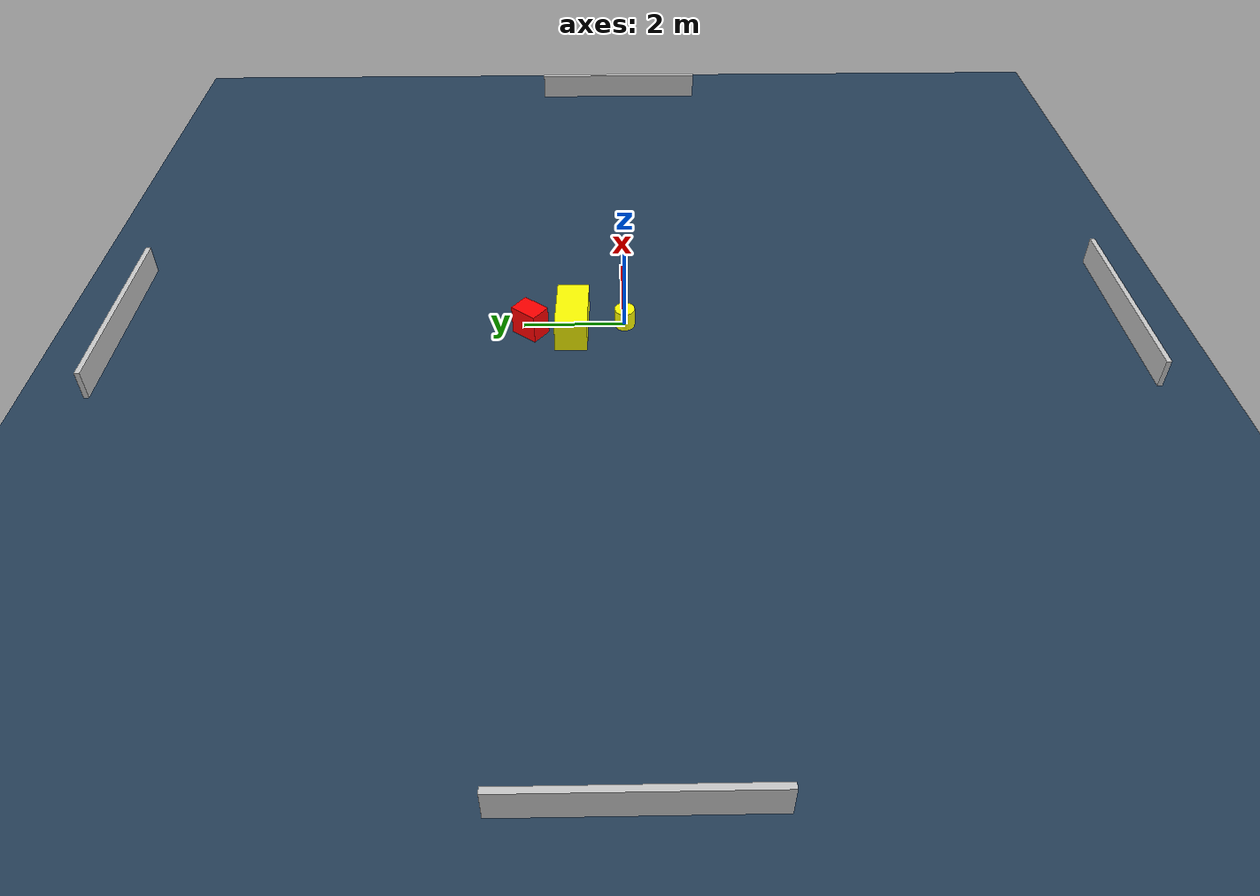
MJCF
<?xml version="1.0" ?>
<mujoco model="generated_environment">
  <option timestep="0.01" integrator="RK4" cone="elliptic"/>
  <default>
    <geom density="1"/>
  </default>
  <asset>
    <texture builtin="gradient" height="3072" name="skybox" rgb1="0.3 0.5 0.7" rgb2="0 0 0" type="skybox" width="512"/>
    <texture builtin="checker" height="300" name="groundplane" rgb1="0.2 0.3 0.4" rgb2="0.1 0.2 0.3" type="2d" width="300"/>
    <material name="groundplane" reflectance="0.2" texrepeat="5 5" texture="groundplane"/>
  </asset>
  <worldbody>
    <light dir="0 0 -1" directional="true" pos="0 0 1.5"/>
    <geom condim="3" friction="0.5 0.005 0.001" material="groundplane" name="floor" pos="0 0 0" size="0 0 0.05" type="plane"/>
    <body name="walls">
      <geom name="wall_1" condim="4" pos="-10.0 0.0 0.3" rgba="0.800000011920929 0.800000011920929 0.800000011920929 1.0" size="0.05 2.0 0.3" type="box"/>
      <geom name="wall_2" condim="4" pos="10.0 0.0 0.3" rgba="0.800000011920929 0.800000011920929 0.800000011920929 1.0" size="0.05 2.0 0.3" type="box"/>
      <geom name="wall_3" condim="4" pos="0.0 -10.0 0.3" rgba="0.800000011920929 0.800000011920929 0.800000011920929 1.0" size="2.0 0.05 0.3" type="box"/>
      <geom name="wall_4" condim="4" pos="0.0 10.0 0.3" rgba="0.800000011920929 0.800000011920929 0.800000011920929 1.0" size="2.0 0.05 0.3" type="box"/>
    </body>
    <body name="robot">
      <joint name="joint_x" type="slide" pos="0 0 0" axis="1 0 0"/>
      <joint name="joint_y" type="slide" pos="0 0 0" axis="0 1 0"/>
      <geom name="robot" type="cylinder" pos="0.0 0.0 0.2" size="0.2 0.2 0.0" mass="5.0" friction="1.0 0.005 0.0001" condim="4" rgba="1.0 1.0 0.0 1.0"/>
    </body>
    <body name="obstacle_1_movable">
      <geom name="obstacle_1_movable" condim="4" pos="-0.11575972912212307 1.0408965167096216 0.3" euler="0 0 358.463815548537" friction="0.0 0.005 0.001" rgba="1.0 1.0 0.0 1.0" size="0.6754050146468993 0.31501051765065075 0.3" type="box" mass="0.1"/>
      <joint type="free"/>
    </body>
    <body name="obstacle_2_static">
      <geom name="obstacle_2_static" condim="4" pos="-0.19053498977310054 1.8680760572942405 0.3" euler="0 0 321.556622064925" friction="0.0 0.005 0.001" rgba="1.0 0.0 0.0 1.0" size="0.21064462468789727 0.2880149764992304 0.3" type="box"/>
    </body>
  </worldbody>
  <actuator>
    <motor name="actuator_x" joint="joint_x" gear="1" ctrlrange="-1 1"/>
    <motor name="actuator_y" joint="joint_y" gear="1" ctrlrange="-1 1"/>
  </actuator>
</mujoco>
